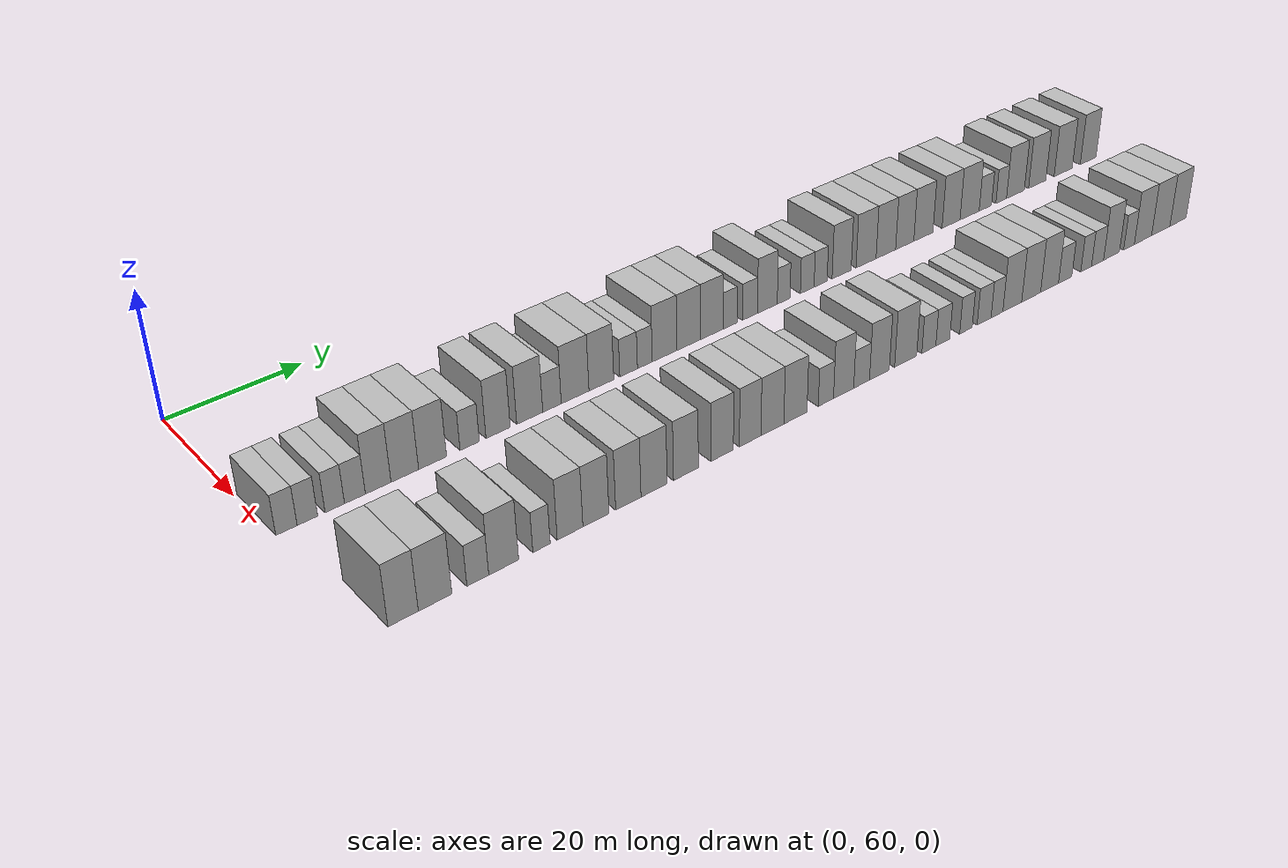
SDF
<sdf version="1.6">
 <world name="default">
  <model name="building_73">
   <static>1</static>
   <pose>25.0000 61.8319 0 0.000000 0.000000 0.000000</pose>
   <link name="link">
    <pose>0 0 3.00 0 0 0</pose>
    <collision name="collision"><geometry><box><size>10.0000 2.8187 6.0000</size></box></geometry></collision>
    <visual name="visual">
     <cast_shadows>0</cast_shadows>
     <geometry><box><size>10.0000 2.8187 6.0000</size></box></geometry>
     <material>
      <script>
       <uri>model://HANNAS_wall/materials/scripts</uri>
       <uri>model://HANNAS_wall/materials/textures</uri>
       <name>vrc/HANNAS_wall</name>
      </script>
     </material>
    </visual>
   </link>
  </model>
  <model name="building_74">
   <static>1</static>
   <pose>25.0000 64.6083 0 0.000000 0.000000 0.000000</pose>
   <link name="link">
    <pose>0 0 3.00 0 0 0</pose>
    <collision name="collision"><geometry><box><size>10.0000 2.7341 6.0000</size></box></geometry></collision>
    <visual name="visual">
     <cast_shadows>0</cast_shadows>
     <geometry><box><size>10.0000 2.7341 6.0000</size></box></geometry>
     <material>
      <script>
       <uri>model://HANNAS_wall/materials/scripts</uri>
       <uri>model://HANNAS_wall/materials/textures</uri>
       <name>vrc/HANNAS_wall</name>
      </script>
     </material>
    </visual>
   </link>
  </model>
  <model name="building_75">
   <static>1</static>
   <pose>25.0000 68.2912 0 0.000000 0.000000 0.000000</pose>
   <link name="link">
    <pose>0 0 3.00 0 0 0</pose>
    <collision name="collision"><geometry><box><size>10.0000 2.6317 6.0000</size></box></geometry></collision>
    <visual name="visual">
     <cast_shadows>0</cast_shadows>
     <geometry><box><size>10.0000 2.6317 6.0000</size></box></geometry>
     <material>
      <script>
       <uri>model://HANNAS_wall/materials/scripts</uri>
       <uri>model://HANNAS_wall/materials/textures</uri>
       <name>vrc/HANNAS_wall</name>
      </script>
     </material>
    </visual>
   </link>
  </model>
  <model name="building_76">
   <static>1</static>
   <pose>25.0000 71.0443 0 0.000000 0.000000 0.000000</pose>
   <link name="link">
    <pose>0 0 3.00 0 0 0</pose>
    <collision name="collision"><geometry><box><size>10.0000 2.8744 6.0000</size></box></geometry></collision>
    <visual name="visual">
     <cast_shadows>0</cast_shadows>
     <geometry><box><size>10.0000 2.8744 6.0000</size></box></geometry>
     <material>
      <script>
       <uri>model://HANNAS_wall/materials/scripts</uri>
       <uri>model://HANNAS_wall/materials/textures</uri>
       <name>vrc/HANNAS_wall</name>
      </script>
     </material>
    </visual>
   </link>
  </model>
  <model name="building_77">
   <static>1</static>
   <pose>25.0000 74.2816 0 0.000000 0.000000 0.000000</pose>
   <link name="link">
    <pose>0 0 4.50 0 0 0</pose>
    <collision name="collision"><geometry><box><size>10.0000 3.6001 9.0000</size></box></geometry></collision>
    <visual name="visual">
     <cast_shadows>0</cast_shadows>
     <geometry><box><size>10.0000 3.6001 9.0000</size></box></geometry>
     <material>
      <script>
       <uri>model://HANNAS_wall/materials/scripts</uri>
       <uri>model://HANNAS_wall/materials/textures</uri>
       <name>vrc/HANNAS_wall</name>
      </script>
     </material>
    </visual>
   </link>
  </model>
  <model name="building_78">
   <static>1</static>
   <pose>25.0000 78.0530 0 0.000000 0.000000 0.000000</pose>
   <link name="link">
    <pose>0 0 4.50 0 0 0</pose>
    <collision name="collision"><geometry><box><size>10.0000 3.9428 9.0000</size></box></geometry></collision>
    <visual name="visual">
     <cast_shadows>0</cast_shadows>
     <geometry><box><size>10.0000 3.9428 9.0000</size></box></geometry>
     <material>
      <script>
       <uri>model://HANNAS_wall/materials/scripts</uri>
       <uri>model://HANNAS_wall/materials/textures</uri>
       <name>vrc/HANNAS_wall</name>
      </script>
     </material>
    </visual>
   </link>
  </model>
  <model name="building_79">
   <static>1</static>
   <pose>25.0000 82.0586 0 0.000000 0.000000 0.000000</pose>
   <link name="link">
    <pose>0 0 4.50 0 0 0</pose>
    <collision name="collision"><geometry><box><size>10.0000 4.0683 9.0000</size></box></geometry></collision>
    <visual name="visual">
     <cast_shadows>0</cast_shadows>
     <geometry><box><size>10.0000 4.0683 9.0000</size></box></geometry>
     <material>
      <script>
       <uri>model://HANNAS_wall/materials/scripts</uri>
       <uri>model://HANNAS_wall/materials/textures</uri>
       <name>vrc/HANNAS_wall</name>
      </script>
     </material>
    </visual>
   </link>
  </model>
  <model name="building_80">
   <static>1</static>
   <pose>25.0000 87.5344 0 0.000000 0.000000 0.000000</pose>
   <link name="link">
    <pose>0 0 3.00 0 0 0</pose>
    <collision name="collision"><geometry><box><size>10.0000 2.8834 6.0000</size></box></geometry></collision>
    <visual name="visual">
     <cast_shadows>0</cast_shadows>
     <geometry><box><size>10.0000 2.8834 6.0000</size></box></geometry>
     <material>
      <script>
       <uri>model://HANNAS_wall/materials/scripts</uri>
       <uri>model://HANNAS_wall/materials/textures</uri>
       <name>vrc/HANNAS_wall</name>
      </script>
     </material>
    </visual>
   </link>
  </model>
  <model name="building_81">
   <static>1</static>
   <pose>25.0000 91.8298 0 0.000000 0.000000 0.000000</pose>
   <link name="link">
    <pose>0 0 4.50 0 0 0</pose>
    <collision name="collision"><geometry><box><size>10.0000 3.7073 9.0000</size></box></geometry></collision>
    <visual name="visual">
     <cast_shadows>0</cast_shadows>
     <geometry><box><size>10.0000 3.7073 9.0000</size></box></geometry>
     <material>
      <script>
       <uri>model://HANNAS_wall/materials/scripts</uri>
       <uri>model://HANNAS_wall/materials/textures</uri>
       <name>vrc/HANNAS_wall</name>
      </script>
     </material>
    </visual>
   </link>
  </model>
  <model name="building_82">
   <static>1</static>
   <pose>25.0000 96.7213 0 0.000000 0.000000 0.000000</pose>
   <link name="link">
    <pose>0 0 4.50 0 0 0</pose>
    <collision name="collision"><geometry><box><size>10.0000 4.0758 9.0000</size></box></geometry></collision>
    <visual name="visual">
     <cast_shadows>0</cast_shadows>
     <geometry><box><size>10.0000 4.0758 9.0000</size></box></geometry>
     <material>
      <script>
       <uri>model://HANNAS_wall/materials/scripts</uri>
       <uri>model://HANNAS_wall/materials/textures</uri>
       <name>vrc/HANNAS_wall</name>
      </script>
     </material>
    </visual>
   </link>
  </model>
  <model name="building_83">
   <static>1</static>
   <pose>25.0000 100.2314 0 0.000000 0.000000 0.000000</pose>
   <link name="link">
    <pose>0 0 3.00 0 0 0</pose>
    <collision name="collision"><geometry><box><size>10.0000 2.9443 6.0000</size></box></geometry></collision>
    <visual name="visual">
     <cast_shadows>0</cast_shadows>
     <geometry><box><size>10.0000 2.9443 6.0000</size></box></geometry>
     <material>
      <script>
       <uri>model://HANNAS_wall/materials/scripts</uri>
       <uri>model://HANNAS_wall/materials/textures</uri>
       <name>vrc/HANNAS_wall</name>
      </script>
     </material>
    </visual>
   </link>
  </model>
  <model name="building_84">
   <static>1</static>
   <pose>25.0000 103.9485 0 0.000000 0.000000 0.000000</pose>
   <link name="link">
    <pose>0 0 4.50 0 0 0</pose>
    <collision name="collision"><geometry><box><size>10.0000 4.4898 9.0000</size></box></geometry></collision>
    <visual name="visual">
     <cast_shadows>0</cast_shadows>
     <geometry><box><size>10.0000 4.4898 9.0000</size></box></geometry>
     <material>
      <script>
       <uri>model://HANNAS_wall/materials/scripts</uri>
       <uri>model://HANNAS_wall/materials/textures</uri>
       <name>vrc/HANNAS_wall</name>
      </script>
     </material>
    </visual>
   </link>
  </model>
  <model name="building_85">
   <static>1</static>
   <pose>25.0000 108.2435 0 0.000000 0.000000 0.000000</pose>
   <link name="link">
    <pose>0 0 4.50 0 0 0</pose>
    <collision name="collision"><geometry><box><size>10.0000 4.1002 9.0000</size></box></geometry></collision>
    <visual name="visual">
     <cast_shadows>0</cast_shadows>
     <geometry><box><size>10.0000 4.1002 9.0000</size></box></geometry>
     <material>
      <script>
       <uri>model://HANNAS_wall/materials/scripts</uri>
       <uri>model://HANNAS_wall/materials/textures</uri>
       <name>vrc/HANNAS_wall</name>
      </script>
     </material>
    </visual>
   </link>
  </model>
  <model name="building_86">
   <static>1</static>
   <pose>25.0000 112.7865 0 0.000000 0.000000 0.000000</pose>
   <link name="link">
    <pose>0 0 3.00 0 0 0</pose>
    <collision name="collision"><geometry><box><size>10.0000 2.9858 6.0000</size></box></geometry></collision>
    <visual name="visual">
     <cast_shadows>0</cast_shadows>
     <geometry><box><size>10.0000 2.9858 6.0000</size></box></geometry>
     <material>
      <script>
       <uri>model://HANNAS_wall/materials/scripts</uri>
       <uri>model://HANNAS_wall/materials/textures</uri>
       <name>vrc/HANNAS_wall</name>
      </script>
     </material>
    </visual>
   </link>
  </model>
  <model name="building_87">
   <static>1</static>
   <pose>25.0000 115.5462 0 0.000000 0.000000 0.000000</pose>
   <link name="link">
    <pose>0 0 3.00 0 0 0</pose>
    <collision name="collision"><geometry><box><size>10.0000 2.5335 6.0000</size></box></geometry></collision>
    <visual name="visual">
     <cast_shadows>0</cast_shadows>
     <geometry><box><size>10.0000 2.5335 6.0000</size></box></geometry>
     <material>
      <script>
       <uri>model://HANNAS_wall/materials/scripts</uri>
       <uri>model://HANNAS_wall/materials/textures</uri>
       <name>vrc/HANNAS_wall</name>
      </script>
     </material>
    </visual>
   </link>
  </model>
  <model name="building_88">
   <static>1</static>
   <pose>25.0000 118.9617 0 0.000000 0.000000 0.000000</pose>
   <link name="link">
    <pose>0 0 4.50 0 0 0</pose>
    <collision name="collision"><geometry><box><size>10.0000 4.2975 9.0000</size></box></geometry></collision>
    <visual name="visual">
     <cast_shadows>0</cast_shadows>
     <geometry><box><size>10.0000 4.2975 9.0000</size></box></geometry>
     <material>
      <script>
       <uri>model://HANNAS_wall/materials/scripts</uri>
       <uri>model://HANNAS_wall/materials/textures</uri>
       <name>vrc/HANNAS_wall</name>
      </script>
     </material>
    </visual>
   </link>
  </model>
  <model name="building_89">
   <static>1</static>
   <pose>25.0000 123.1814 0 0.000000 0.000000 0.000000</pose>
   <link name="link">
    <pose>0 0 4.50 0 0 0</pose>
    <collision name="collision"><geometry><box><size>10.0000 4.1420 9.0000</size></box></geometry></collision>
    <visual name="visual">
     <cast_shadows>0</cast_shadows>
     <geometry><box><size>10.0000 4.1420 9.0000</size></box></geometry>
     <material>
      <script>
       <uri>model://HANNAS_wall/materials/scripts</uri>
       <uri>model://HANNAS_wall/materials/textures</uri>
       <name>vrc/HANNAS_wall</name>
      </script>
     </material>
    </visual>
   </link>
  </model>
  <model name="building_90">
   <static>1</static>
   <pose>25.0000 127.3160 0 0.000000 0.000000 0.000000</pose>
   <link name="link">
    <pose>0 0 4.50 0 0 0</pose>
    <collision name="collision"><geometry><box><size>10.0000 4.1271 9.0000</size></box></geometry></collision>
    <visual name="visual">
     <cast_shadows>0</cast_shadows>
     <geometry><box><size>10.0000 4.1271 9.0000</size></box></geometry>
     <material>
      <script>
       <uri>model://HANNAS_wall/materials/scripts</uri>
       <uri>model://HANNAS_wall/materials/textures</uri>
       <name>vrc/HANNAS_wall</name>
      </script>
     </material>
    </visual>
   </link>
  </model>
  <model name="building_91">
   <static>1</static>
   <pose>25.0000 130.6345 0 0.000000 0.000000 0.000000</pose>
   <link name="link">
    <pose>0 0 3.00 0 0 0</pose>
    <collision name="collision"><geometry><box><size>10.0000 2.5099 6.0000</size></box></geometry></collision>
    <visual name="visual">
     <cast_shadows>0</cast_shadows>
     <geometry><box><size>10.0000 2.5099 6.0000</size></box></geometry>
     <material>
      <script>
       <uri>model://HANNAS_wall/materials/scripts</uri>
       <uri>model://HANNAS_wall/materials/textures</uri>
       <name>vrc/HANNAS_wall</name>
      </script>
     </material>
    </visual>
   </link>
  </model>
  <model name="building_92">
   <static>1</static>
   <pose>25.0000 134.2920 0 0.000000 0.000000 0.000000</pose>
   <link name="link">
    <pose>0 0 3.00 0 0 0</pose>
    <collision name="collision"><geometry><box><size>10.0000 2.8053 6.0000</size></box></geometry></collision>
    <visual name="visual">
     <cast_shadows>0</cast_shadows>
     <geometry><box><size>10.0000 2.8053 6.0000</size></box></geometry>
     <material>
      <script>
       <uri>model://HANNAS_wall/materials/scripts</uri>
       <uri>model://HANNAS_wall/materials/textures</uri>
       <name>vrc/HANNAS_wall</name>
      </script>
     </material>
    </visual>
   </link>
  </model>
  <model name="building_93">
   <static>1</static>
   <pose>25.0000 137.5602 0 0.000000 0.000000 0.000000</pose>
   <link name="link">
    <pose>0 0 4.50 0 0 0</pose>
    <collision name="collision"><geometry><box><size>10.0000 3.7310 9.0000</size></box></geometry></collision>
    <visual name="visual">
     <cast_shadows>0</cast_shadows>
     <geometry><box><size>10.0000 3.7310 9.0000</size></box></geometry>
     <material>
      <script>
       <uri>model://HANNAS_wall/materials/scripts</uri>
       <uri>model://HANNAS_wall/materials/textures</uri>
       <name>vrc/HANNAS_wall</name>
      </script>
     </material>
    </visual>
   </link>
  </model>
  <model name="building_94">
   <static>1</static>
   <pose>25.0000 140.6447 0 0.000000 0.000000 0.000000</pose>
   <link name="link">
    <pose>0 0 3.00 0 0 0</pose>
    <collision name="collision"><geometry><box><size>10.0000 2.4380 6.0000</size></box></geometry></collision>
    <visual name="visual">
     <cast_shadows>0</cast_shadows>
     <geometry><box><size>10.0000 2.4380 6.0000</size></box></geometry>
     <material>
      <script>
       <uri>model://HANNAS_wall/materials/scripts</uri>
       <uri>model://HANNAS_wall/materials/textures</uri>
       <name>vrc/HANNAS_wall</name>
      </script>
     </material>
    </visual>
   </link>
  </model>
  <model name="building_95">
   <static>1</static>
   <pose>25.0000 145.2001 0 0.000000 0.000000 0.000000</pose>
   <link name="link">
    <pose>0 0 3.00 0 0 0</pose>
    <collision name="collision"><geometry><box><size>10.0000 2.6729 6.0000</size></box></geometry></collision>
    <visual name="visual">
     <cast_shadows>0</cast_shadows>
     <geometry><box><size>10.0000 2.6729 6.0000</size></box></geometry>
     <material>
      <script>
       <uri>model://HANNAS_wall/materials/scripts</uri>
       <uri>model://HANNAS_wall/materials/textures</uri>
       <name>vrc/HANNAS_wall</name>
      </script>
     </material>
    </visual>
   </link>
  </model>
  <model name="building_96">
   <static>1</static>
   <pose>25.0000 147.8173 0 0.000000 0.000000 0.000000</pose>
   <link name="link">
    <pose>0 0 3.00 0 0 0</pose>
    <collision name="collision"><geometry><box><size>10.0000 2.5614 6.0000</size></box></geometry></collision>
    <visual name="visual">
     <cast_shadows>0</cast_shadows>
     <geometry><box><size>10.0000 2.5614 6.0000</size></box></geometry>
     <material>
      <script>
       <uri>model://HANNAS_wall/materials/scripts</uri>
       <uri>model://HANNAS_wall/materials/textures</uri>
       <name>vrc/HANNAS_wall</name>
      </script>
     </material>
    </visual>
   </link>
  </model>
  <model name="building_97">
   <static>1</static>
   <pose>25.0000 152.0113 0 0.000000 0.000000 0.000000</pose>
   <link name="link">
    <pose>0 0 4.50 0 0 0</pose>
    <collision name="collision"><geometry><box><size>10.0000 3.8267 9.0000</size></box></geometry></collision>
    <visual name="visual">
     <cast_shadows>0</cast_shadows>
     <geometry><box><size>10.0000 3.8267 9.0000</size></box></geometry>
     <material>
      <script>
       <uri>model://HANNAS_wall/materials/scripts</uri>
       <uri>model://HANNAS_wall/materials/textures</uri>
       <name>vrc/HANNAS_wall</name>
      </script>
     </material>
    </visual>
   </link>
  </model>
  <model name="building_98">
   <static>1</static>
   <pose>25.0000 156.9770 0 0.000000 0.000000 0.000000</pose>
   <link name="link">
    <pose>0 0 4.50 0 0 0</pose>
    <collision name="collision"><geometry><box><size>10.0000 4.1046 9.0000</size></box></geometry></collision>
    <visual name="visual">
     <cast_shadows>0</cast_shadows>
     <geometry><box><size>10.0000 4.1046 9.0000</size></box></geometry>
     <material>
      <script>
       <uri>model://HANNAS_wall/materials/scripts</uri>
       <uri>model://HANNAS_wall/materials/textures</uri>
       <name>vrc/HANNAS_wall</name>
      </script>
     </material>
    </visual>
   </link>
  </model>
  <model name="building_99">
   <static>1</static>
   <pose>25.0000 161.0679 0 0.000000 0.000000 0.000000</pose>
   <link name="link">
    <pose>0 0 4.50 0 0 0</pose>
    <collision name="collision"><geometry><box><size>10.0000 4.0772 9.0000</size></box></geometry></collision>
    <visual name="visual">
     <cast_shadows>0</cast_shadows>
     <geometry><box><size>10.0000 4.0772 9.0000</size></box></geometry>
     <material>
      <script>
       <uri>model://HANNAS_wall/materials/scripts</uri>
       <uri>model://HANNAS_wall/materials/textures</uri>
       <name>vrc/HANNAS_wall</name>
      </script>
     </material>
    </visual>
   </link>
  </model>
  <model name="building_100">
   <static>1</static>
   <pose>25.0000 165.0395 0 0.000000 0.000000 0.000000</pose>
   <link name="link">
    <pose>0 0 4.50 0 0 0</pose>
    <collision name="collision"><geometry><box><size>10.0000 3.8660 9.0000</size></box></geometry></collision>
    <visual name="visual">
     <cast_shadows>0</cast_shadows>
     <geometry><box><size>10.0000 3.8660 9.0000</size></box></geometry>
     <material>
      <script>
       <uri>model://HANNAS_wall/materials/scripts</uri>
       <uri>model://HANNAS_wall/materials/textures</uri>
       <name>vrc/HANNAS_wall</name>
      </script>
     </material>
    </visual>
   </link>
  </model>
  <model name="building_101">
   <static>1</static>
   <pose>25.0000 169.0310 0 0.000000 0.000000 0.000000</pose>
   <link name="link">
    <pose>0 0 4.50 0 0 0</pose>
    <collision name="collision"><geometry><box><size>10.0000 4.1170 9.0000</size></box></geometry></collision>
    <visual name="visual">
     <cast_shadows>0</cast_shadows>
     <geometry><box><size>10.0000 4.1170 9.0000</size></box></geometry>
     <material>
      <script>
       <uri>model://HANNAS_wall/materials/scripts</uri>
       <uri>model://HANNAS_wall/materials/textures</uri>
       <name>vrc/HANNAS_wall</name>
      </script>
     </material>
    </visual>
   </link>
  </model>
  <model name="building_102">
   <static>1</static>
   <pose>25.0000 175.0719 0 0.000000 0.000000 0.000000</pose>
   <link name="link">
    <pose>0 0 4.50 0 0 0</pose>
    <collision name="collision"><geometry><box><size>10.0000 3.9646 9.0000</size></box></geometry></collision>
    <visual name="visual">
     <cast_shadows>0</cast_shadows>
     <geometry><box><size>10.0000 3.9646 9.0000</size></box></geometry>
     <material>
      <script>
       <uri>model://HANNAS_wall/materials/scripts</uri>
       <uri>model://HANNAS_wall/materials/textures</uri>
       <name>vrc/HANNAS_wall</name>
      </script>
     </material>
    </visual>
   </link>
  </model>
  <model name="building_103">
   <static>1</static>
   <pose>25.0000 179.2059 0 0.000000 0.000000 0.000000</pose>
   <link name="link">
    <pose>0 0 4.50 0 0 0</pose>
    <collision name="collision"><geometry><box><size>10.0000 4.3034 9.0000</size></box></geometry></collision>
    <visual name="visual">
     <cast_shadows>0</cast_shadows>
     <geometry><box><size>10.0000 4.3034 9.0000</size></box></geometry>
     <material>
      <script>
       <uri>model://HANNAS_wall/materials/scripts</uri>
       <uri>model://HANNAS_wall/materials/textures</uri>
       <name>vrc/HANNAS_wall</name>
      </script>
     </material>
    </visual>
   </link>
  </model>
  <model name="building_104">
   <static>1</static>
   <pose>25.0000 182.7701 0 0.000000 0.000000 0.000000</pose>
   <link name="link">
    <pose>0 0 3.00 0 0 0</pose>
    <collision name="collision"><geometry><box><size>10.0000 2.8250 6.0000</size></box></geometry></collision>
    <visual name="visual">
     <cast_shadows>0</cast_shadows>
     <geometry><box><size>10.0000 2.8250 6.0000</size></box></geometry>
     <material>
      <script>
       <uri>model://HANNAS_wall/materials/scripts</uri>
       <uri>model://HANNAS_wall/materials/textures</uri>
       <name>vrc/HANNAS_wall</name>
      </script>
     </material>
    </visual>
   </link>
  </model>
  <model name="building_105">
   <static>1</static>
   <pose>25.0000 186.4156 0 0.000000 0.000000 0.000000</pose>
   <link name="link">
    <pose>0 0 3.00 0 0 0</pose>
    <collision name="collision"><geometry><box><size>10.0000 2.4659 6.0000</size></box></geometry></collision>
    <visual name="visual">
     <cast_shadows>0</cast_shadows>
     <geometry><box><size>10.0000 2.4659 6.0000</size></box></geometry>
     <material>
      <script>
       <uri>model://HANNAS_wall/materials/scripts</uri>
       <uri>model://HANNAS_wall/materials/textures</uri>
       <name>vrc/HANNAS_wall</name>
      </script>
     </material>
    </visual>
   </link>
  </model>
  <model name="building_106">
   <static>1</static>
   <pose>25.0000 189.7347 0 0.000000 0.000000 0.000000</pose>
   <link name="link">
    <pose>0 0 4.50 0 0 0</pose>
    <collision name="collision"><geometry><box><size>10.0000 4.1724 9.0000</size></box></geometry></collision>
    <visual name="visual">
     <cast_shadows>0</cast_shadows>
     <geometry><box><size>10.0000 4.1724 9.0000</size></box></geometry>
     <material>
      <script>
       <uri>model://HANNAS_wall/materials/scripts</uri>
       <uri>model://HANNAS_wall/materials/textures</uri>
       <name>vrc/HANNAS_wall</name>
      </script>
     </material>
    </visual>
   </link>
  </model>
  <model name="building_107">
   <static>1</static>
   <pose>25.0000 194.8860 0 0.000000 0.000000 0.000000</pose>
   <link name="link">
    <pose>0 0 4.50 0 0 0</pose>
    <collision name="collision"><geometry><box><size>10.0000 4.1301 9.0000</size></box></geometry></collision>
    <visual name="visual">
     <cast_shadows>0</cast_shadows>
     <geometry><box><size>10.0000 4.1301 9.0000</size></box></geometry>
     <material>
      <script>
       <uri>model://HANNAS_wall/materials/scripts</uri>
       <uri>model://HANNAS_wall/materials/textures</uri>
       <name>vrc/HANNAS_wall</name>
      </script>
     </material>
    </visual>
   </link>
  </model>
  <model name="building_108">
   <static>1</static>
   <pose>25.0000 201.1673 0 0.000000 0.000000 0.000000</pose>
   <link name="link">
    <pose>0 0 4.50 0 0 0</pose>
    <collision name="collision"><geometry><box><size>10.0000 4.4326 9.0000</size></box></geometry></collision>
    <visual name="visual">
     <cast_shadows>0</cast_shadows>
     <geometry><box><size>10.0000 4.4326 9.0000</size></box></geometry>
     <material>
      <script>
       <uri>model://HANNAS_wall/materials/scripts</uri>
       <uri>model://HANNAS_wall/materials/textures</uri>
       <name>vrc/HANNAS_wall</name>
      </script>
     </material>
    </visual>
   </link>
  </model>
  <model name="building_109">
   <static>1</static>
   <pose>25.0000 207.3583 0 0.000000 0.000000 0.000000</pose>
   <link name="link">
    <pose>0 0 4.50 0 0 0</pose>
    <collision name="collision"><geometry><box><size>10.0000 3.9495 9.0000</size></box></geometry></collision>
    <visual name="visual">
     <cast_shadows>0</cast_shadows>
     <geometry><box><size>10.0000 3.9495 9.0000</size></box></geometry>
     <material>
      <script>
       <uri>model://HANNAS_wall/materials/scripts</uri>
       <uri>model://HANNAS_wall/materials/textures</uri>
       <name>vrc/HANNAS_wall</name>
      </script>
     </material>
    </visual>
   </link>
  </model>
  <model name="building_180">
   <static>1</static>
   <pose>47.0000 64.5624 0 0.000000 0.000000 0.000000</pose>
   <link name="link">
    <pose>0 0 4.50 0 0 0</pose>
    <collision name="collision"><geometry><box><size>10.0000 3.9040 9.0000</size></box></geometry></collision>
    <visual name="visual">
     <cast_shadows>0</cast_shadows>
     <geometry><box><size>10.0000 3.9040 9.0000</size></box></geometry>
     <material>
      <script>
       <uri>model://HANNAS_wall/materials/scripts</uri>
       <uri>model://HANNAS_wall/materials/textures</uri>
       <name>vrc/HANNAS_wall</name>
      </script>
     </material>
    </visual>
   </link>
  </model>
  <model name="building_181">
   <static>1</static>
   <pose>47.0000 68.7230 0 0.000000 0.000000 0.000000</pose>
   <link name="link">
    <pose>0 0 4.50 0 0 0</pose>
    <collision name="collision"><geometry><box><size>10.0000 4.4172 9.0000</size></box></geometry></collision>
    <visual name="visual">
     <cast_shadows>0</cast_shadows>
     <geometry><box><size>10.0000 4.4172 9.0000</size></box></geometry>
     <material>
      <script>
       <uri>model://HANNAS_wall/materials/scripts</uri>
       <uri>model://HANNAS_wall/materials/textures</uri>
       <name>vrc/HANNAS_wall</name>
      </script>
     </material>
    </visual>
   </link>
  </model>
  <model name="building_182">
   <static>1</static>
   <pose>47.0000 74.4105 0 0.000000 0.000000 0.000000</pose>
   <link name="link">
    <pose>0 0 3.00 0 0 0</pose>
    <collision name="collision"><geometry><box><size>10.0000 2.9579 6.0000</size></box></geometry></collision>
    <visual name="visual">
     <cast_shadows>0</cast_shadows>
     <geometry><box><size>10.0000 2.9579 6.0000</size></box></geometry>
     <material>
      <script>
       <uri>model://HANNAS_wall/materials/scripts</uri>
       <uri>model://HANNAS_wall/materials/textures</uri>
       <name>vrc/HANNAS_wall</name>
      </script>
     </material>
    </visual>
   </link>
  </model>
  <model name="building_183">
   <static>1</static>
   <pose>47.0000 77.9541 0 0.000000 0.000000 0.000000</pose>
   <link name="link">
    <pose>0 0 4.50 0 0 0</pose>
    <collision name="collision"><geometry><box><size>10.0000 4.1292 9.0000</size></box></geometry></collision>
    <visual name="visual">
     <cast_shadows>0</cast_shadows>
     <geometry><box><size>10.0000 4.1292 9.0000</size></box></geometry>
     <material>
      <script>
       <uri>model://HANNAS_wall/materials/scripts</uri>
       <uri>model://HANNAS_wall/materials/textures</uri>
       <name>vrc/HANNAS_wall</name>
      </script>
     </material>
    </visual>
   </link>
  </model>
  <model name="building_184">
   <static>1</static>
   <pose>47.0000 83.2530 0 0.000000 0.000000 0.000000</pose>
   <link name="link">
    <pose>0 0 3.00 0 0 0</pose>
    <collision name="collision"><geometry><box><size>10.0000 2.4685 6.0000</size></box></geometry></collision>
    <visual name="visual">
     <cast_shadows>0</cast_shadows>
     <geometry><box><size>10.0000 2.4685 6.0000</size></box></geometry>
     <material>
      <script>
       <uri>model://HANNAS_wall/materials/scripts</uri>
       <uri>model://HANNAS_wall/materials/textures</uri>
       <name>vrc/HANNAS_wall</name>
      </script>
     </material>
    </visual>
   </link>
  </model>
  <model name="building_185">
   <static>1</static>
   <pose>47.0000 87.3559 0 0.000000 0.000000 0.000000</pose>
   <link name="link">
    <pose>0 0 4.50 0 0 0</pose>
    <collision name="collision"><geometry><box><size>10.0000 3.7373 9.0000</size></box></geometry></collision>
    <visual name="visual">
     <cast_shadows>0</cast_shadows>
     <geometry><box><size>10.0000 3.7373 9.0000</size></box></geometry>
     <material>
      <script>
       <uri>model://HANNAS_wall/materials/scripts</uri>
       <uri>model://HANNAS_wall/materials/textures</uri>
       <name>vrc/HANNAS_wall</name>
      </script>
     </material>
    </visual>
   </link>
  </model>
  <model name="building_186">
   <static>1</static>
   <pose>47.0000 91.1554 0 0.000000 0.000000 0.000000</pose>
   <link name="link">
    <pose>0 0 4.50 0 0 0</pose>
    <collision name="collision"><geometry><box><size>10.0000 3.8617 9.0000</size></box></geometry></collision>
    <visual name="visual">
     <cast_shadows>0</cast_shadows>
     <geometry><box><size>10.0000 3.8617 9.0000</size></box></geometry>
     <material>
      <script>
       <uri>model://HANNAS_wall/materials/scripts</uri>
       <uri>model://HANNAS_wall/materials/textures</uri>
       <name>vrc/HANNAS_wall</name>
      </script>
     </material>
    </visual>
   </link>
  </model>
  <model name="building_187">
   <static>1</static>
   <pose>47.0000 96.0123 0 0.000000 0.000000 0.000000</pose>
   <link name="link">
    <pose>0 0 4.50 0 0 0</pose>
    <collision name="collision"><geometry><box><size>10.0000 3.8521 9.0000</size></box></geometry></collision>
    <visual name="visual">
     <cast_shadows>0</cast_shadows>
     <geometry><box><size>10.0000 3.8521 9.0000</size></box></geometry>
     <material>
      <script>
       <uri>model://HANNAS_wall/materials/scripts</uri>
       <uri>model://HANNAS_wall/materials/textures</uri>
       <name>vrc/HANNAS_wall</name>
      </script>
     </material>
    </visual>
   </link>
  </model>
  <model name="building_188">
   <static>1</static>
   <pose>47.0000 99.9639 0 0.000000 0.000000 0.000000</pose>
   <link name="link">
    <pose>0 0 4.50 0 0 0</pose>
    <collision name="collision"><geometry><box><size>10.0000 4.0510 9.0000</size></box></geometry></collision>
    <visual name="visual">
     <cast_shadows>0</cast_shadows>
     <geometry><box><size>10.0000 4.0510 9.0000</size></box></geometry>
     <material>
      <script>
       <uri>model://HANNAS_wall/materials/scripts</uri>
       <uri>model://HANNAS_wall/materials/textures</uri>
       <name>vrc/HANNAS_wall</name>
      </script>
     </material>
    </visual>
   </link>
  </model>
  <model name="building_189">
   <static>1</static>
   <pose>47.0000 104.9676 0 0.000000 0.000000 0.000000</pose>
   <link name="link">
    <pose>0 0 4.50 0 0 0</pose>
    <collision name="collision"><geometry><box><size>10.0000 3.9566 9.0000</size></box></geometry></collision>
    <visual name="visual">
     <cast_shadows>0</cast_shadows>
     <geometry><box><size>10.0000 3.9566 9.0000</size></box></geometry>
     <material>
      <script>
       <uri>model://HANNAS_wall/materials/scripts</uri>
       <uri>model://HANNAS_wall/materials/textures</uri>
       <name>vrc/HANNAS_wall</name>
      </script>
     </material>
    </visual>
   </link>
  </model>
  <model name="building_190">
   <static>1</static>
   <pose>47.0000 110.7946 0 0.000000 0.000000 0.000000</pose>
   <link name="link">
    <pose>0 0 4.50 0 0 0</pose>
    <collision name="collision"><geometry><box><size>10.0000 3.6973 9.0000</size></box></geometry></collision>
    <visual name="visual">
     <cast_shadows>0</cast_shadows>
     <geometry><box><size>10.0000 3.6973 9.0000</size></box></geometry>
     <material>
      <script>
       <uri>model://HANNAS_wall/materials/scripts</uri>
       <uri>model://HANNAS_wall/materials/textures</uri>
       <name>vrc/HANNAS_wall</name>
      </script>
     </material>
    </visual>
   </link>
  </model>
  <model name="building_191">
   <static>1</static>
   <pose>47.0000 115.4514 0 0.000000 0.000000 0.000000</pose>
   <link name="link">
    <pose>0 0 4.50 0 0 0</pose>
    <collision name="collision"><geometry><box><size>10.0000 3.6164 9.0000</size></box></geometry></collision>
    <visual name="visual">
     <cast_shadows>0</cast_shadows>
     <geometry><box><size>10.0000 3.6164 9.0000</size></box></geometry>
     <material>
      <script>
       <uri>model://HANNAS_wall/materials/scripts</uri>
       <uri>model://HANNAS_wall/materials/textures</uri>
       <name>vrc/HANNAS_wall</name>
      </script>
     </material>
    </visual>
   </link>
  </model>
  <model name="building_192">
   <static>1</static>
   <pose>47.0000 119.2091 0 0.000000 0.000000 0.000000</pose>
   <link name="link">
    <pose>0 0 4.50 0 0 0</pose>
    <collision name="collision"><geometry><box><size>10.0000 3.8989 9.0000</size></box></geometry></collision>
    <visual name="visual">
     <cast_shadows>0</cast_shadows>
     <geometry><box><size>10.0000 3.8989 9.0000</size></box></geometry>
     <material>
      <script>
       <uri>model://HANNAS_wall/materials/scripts</uri>
       <uri>model://HANNAS_wall/materials/textures</uri>
       <name>vrc/HANNAS_wall</name>
      </script>
     </material>
    </visual>
   </link>
  </model>
  <model name="building_193">
   <static>1</static>
   <pose>47.0000 123.1654 0 0.000000 0.000000 0.000000</pose>
   <link name="link">
    <pose>0 0 4.50 0 0 0</pose>
    <collision name="collision"><geometry><box><size>10.0000 4.0137 9.0000</size></box></geometry></collision>
    <visual name="visual">
     <cast_shadows>0</cast_shadows>
     <geometry><box><size>10.0000 4.0137 9.0000</size></box></geometry>
     <material>
      <script>
       <uri>model://HANNAS_wall/materials/scripts</uri>
       <uri>model://HANNAS_wall/materials/textures</uri>
       <name>vrc/HANNAS_wall</name>
      </script>
     </material>
    </visual>
   </link>
  </model>
  <model name="building_194">
   <static>1</static>
   <pose>47.0000 128.5284 0 0.000000 0.000000 0.000000</pose>
   <link name="link">
    <pose>0 0 3.00 0 0 0</pose>
    <collision name="collision"><geometry><box><size>10.0000 2.7123 6.0000</size></box></geometry></collision>
    <visual name="visual">
     <cast_shadows>0</cast_shadows>
     <geometry><box><size>10.0000 2.7123 6.0000</size></box></geometry>
     <material>
      <script>
       <uri>model://HANNAS_wall/materials/scripts</uri>
       <uri>model://HANNAS_wall/materials/textures</uri>
       <name>vrc/HANNAS_wall</name>
      </script>
     </material>
    </visual>
   </link>
  </model>
  <model name="building_195">
   <static>1</static>
   <pose>47.0000 131.7129 0 0.000000 0.000000 0.000000</pose>
   <link name="link">
    <pose>0 0 4.50 0 0 0</pose>
    <collision name="collision"><geometry><box><size>10.0000 3.6566 9.0000</size></box></geometry></collision>
    <visual name="visual">
     <cast_shadows>0</cast_shadows>
     <geometry><box><size>10.0000 3.6566 9.0000</size></box></geometry>
     <material>
      <script>
       <uri>model://HANNAS_wall/materials/scripts</uri>
       <uri>model://HANNAS_wall/materials/textures</uri>
       <name>vrc/HANNAS_wall</name>
      </script>
     </material>
    </visual>
   </link>
  </model>
  <model name="building_196">
   <static>1</static>
   <pose>47.0000 134.9976 0 0.000000 0.000000 0.000000</pose>
   <link name="link">
    <pose>0 0 3.00 0 0 0</pose>
    <collision name="collision"><geometry><box><size>10.0000 2.9129 6.0000</size></box></geometry></collision>
    <visual name="visual">
     <cast_shadows>0</cast_shadows>
     <geometry><box><size>10.0000 2.9129 6.0000</size></box></geometry>
     <material>
      <script>
       <uri>model://HANNAS_wall/materials/scripts</uri>
       <uri>model://HANNAS_wall/materials/textures</uri>
       <name>vrc/HANNAS_wall</name>
      </script>
     </material>
    </visual>
   </link>
  </model>
  <model name="building_197">
   <static>1</static>
   <pose>47.0000 138.3024 0 0.000000 0.000000 0.000000</pose>
   <link name="link">
    <pose>0 0 4.50 0 0 0</pose>
    <collision name="collision"><geometry><box><size>10.0000 3.6967 9.0000</size></box></geometry></collision>
    <visual name="visual">
     <cast_shadows>0</cast_shadows>
     <geometry><box><size>10.0000 3.6967 9.0000</size></box></geometry>
     <material>
      <script>
       <uri>model://HANNAS_wall/materials/scripts</uri>
       <uri>model://HANNAS_wall/materials/textures</uri>
       <name>vrc/HANNAS_wall</name>
      </script>
     </material>
    </visual>
   </link>
  </model>
  <model name="building_198">
   <static>1</static>
   <pose>47.0000 143.2595 0 0.000000 0.000000 0.000000</pose>
   <link name="link">
    <pose>0 0 4.50 0 0 0</pose>
    <collision name="collision"><geometry><box><size>10.0000 4.2175 9.0000</size></box></geometry></collision>
    <visual name="visual">
     <cast_shadows>0</cast_shadows>
     <geometry><box><size>10.0000 4.2175 9.0000</size></box></geometry>
     <material>
      <script>
       <uri>model://HANNAS_wall/materials/scripts</uri>
       <uri>model://HANNAS_wall/materials/textures</uri>
       <name>vrc/HANNAS_wall</name>
      </script>
     </material>
    </visual>
   </link>
  </model>
  <model name="building_199">
   <static>1</static>
   <pose>47.0000 147.7306 0 0.000000 0.000000 0.000000</pose>
   <link name="link">
    <pose>0 0 3.00 0 0 0</pose>
    <collision name="collision"><geometry><box><size>10.0000 2.7247 6.0000</size></box></geometry></collision>
    <visual name="visual">
     <cast_shadows>0</cast_shadows>
     <geometry><box><size>10.0000 2.7247 6.0000</size></box></geometry>
     <material>
      <script>
       <uri>model://HANNAS_wall/materials/scripts</uri>
       <uri>model://HANNAS_wall/materials/textures</uri>
       <name>vrc/HANNAS_wall</name>
      </script>
     </material>
    </visual>
   </link>
  </model>
  <model name="building_200">
   <static>1</static>
   <pose>47.0000 150.4632 0 0.000000 0.000000 0.000000</pose>
   <link name="link">
    <pose>0 0 3.00 0 0 0</pose>
    <collision name="collision"><geometry><box><size>10.0000 2.7406 6.0000</size></box></geometry></collision>
    <visual name="visual">
     <cast_shadows>0</cast_shadows>
     <geometry><box><size>10.0000 2.7406 6.0000</size></box></geometry>
     <material>
      <script>
       <uri>model://HANNAS_wall/materials/scripts</uri>
       <uri>model://HANNAS_wall/materials/textures</uri>
       <name>vrc/HANNAS_wall</name>
      </script>
     </material>
    </visual>
   </link>
  </model>
  <model name="building_201">
   <static>1</static>
   <pose>47.0000 155.0973 0 0.000000 0.000000 0.000000</pose>
   <link name="link">
    <pose>0 0 3.00 0 0 0</pose>
    <collision name="collision"><geometry><box><size>10.0000 2.5276 6.0000</size></box></geometry></collision>
    <visual name="visual">
     <cast_shadows>0</cast_shadows>
     <geometry><box><size>10.0000 2.5276 6.0000</size></box></geometry>
     <material>
      <script>
       <uri>model://HANNAS_wall/materials/scripts</uri>
       <uri>model://HANNAS_wall/materials/textures</uri>
       <name>vrc/HANNAS_wall</name>
      </script>
     </material>
    </visual>
   </link>
  </model>
  <model name="building_202">
   <static>1</static>
   <pose>47.0000 158.7894 0 0.000000 0.000000 0.000000</pose>
   <link name="link">
    <pose>0 0 3.00 0 0 0</pose>
    <collision name="collision"><geometry><box><size>10.0000 2.8566 6.0000</size></box></geometry></collision>
    <visual name="visual">
     <cast_shadows>0</cast_shadows>
     <geometry><box><size>10.0000 2.8566 6.0000</size></box></geometry>
     <material>
      <script>
       <uri>model://HANNAS_wall/materials/scripts</uri>
       <uri>model://HANNAS_wall/materials/textures</uri>
       <name>vrc/HANNAS_wall</name>
      </script>
     </material>
    </visual>
   </link>
  </model>
  <model name="building_203">
   <static>1</static>
   <pose>47.0000 161.4374 0 0.000000 0.000000 0.000000</pose>
   <link name="link">
    <pose>0 0 3.00 0 0 0</pose>
    <collision name="collision"><geometry><box><size>10.0000 2.4393 6.0000</size></box></geometry></collision>
    <visual name="visual">
     <cast_shadows>0</cast_shadows>
     <geometry><box><size>10.0000 2.4393 6.0000</size></box></geometry>
     <material>
      <script>
       <uri>model://HANNAS_wall/materials/scripts</uri>
       <uri>model://HANNAS_wall/materials/textures</uri>
       <name>vrc/HANNAS_wall</name>
      </script>
     </material>
    </visual>
   </link>
  </model>
  <model name="building_204">
   <static>1</static>
   <pose>47.0000 164.6389 0 0.000000 0.000000 0.000000</pose>
   <link name="link">
    <pose>0 0 4.50 0 0 0</pose>
    <collision name="collision"><geometry><box><size>10.0000 3.9638 9.0000</size></box></geometry></collision>
    <visual name="visual">
     <cast_shadows>0</cast_shadows>
     <geometry><box><size>10.0000 3.9638 9.0000</size></box></geometry>
     <material>
      <script>
       <uri>model://HANNAS_wall/materials/scripts</uri>
       <uri>model://HANNAS_wall/materials/textures</uri>
       <name>vrc/HANNAS_wall</name>
      </script>
     </material>
    </visual>
   </link>
  </model>
  <model name="building_205">
   <static>1</static>
   <pose>47.0000 168.6435 0 0.000000 0.000000 0.000000</pose>
   <link name="link">
    <pose>0 0 4.50 0 0 0</pose>
    <collision name="collision"><geometry><box><size>10.0000 4.0454 9.0000</size></box></geometry></collision>
    <visual name="visual">
     <cast_shadows>0</cast_shadows>
     <geometry><box><size>10.0000 4.0454 9.0000</size></box></geometry>
     <material>
      <script>
       <uri>model://HANNAS_wall/materials/scripts</uri>
       <uri>model://HANNAS_wall/materials/textures</uri>
       <name>vrc/HANNAS_wall</name>
      </script>
     </material>
    </visual>
   </link>
  </model>
  <model name="building_206">
   <static>1</static>
   <pose>47.0000 172.6109 0 0.000000 0.000000 0.000000</pose>
   <link name="link">
    <pose>0 0 4.50 0 0 0</pose>
    <collision name="collision"><geometry><box><size>10.0000 3.8894 9.0000</size></box></geometry></collision>
    <visual name="visual">
     <cast_shadows>0</cast_shadows>
     <geometry><box><size>10.0000 3.8894 9.0000</size></box></geometry>
     <material>
      <script>
       <uri>model://HANNAS_wall/materials/scripts</uri>
       <uri>model://HANNAS_wall/materials/textures</uri>
       <name>vrc/HANNAS_wall</name>
      </script>
     </material>
    </visual>
   </link>
  </model>
  <model name="building_207">
   <static>1</static>
   <pose>47.0000 176.0338 0 0.000000 0.000000 0.000000</pose>
   <link name="link">
    <pose>0 0 3.00 0 0 0</pose>
    <collision name="collision"><geometry><box><size>10.0000 2.9564 6.0000</size></box></geometry></collision>
    <visual name="visual">
     <cast_shadows>0</cast_shadows>
     <geometry><box><size>10.0000 2.9564 6.0000</size></box></geometry>
     <material>
      <script>
       <uri>model://HANNAS_wall/materials/scripts</uri>
       <uri>model://HANNAS_wall/materials/textures</uri>
       <name>vrc/HANNAS_wall</name>
      </script>
     </material>
    </visual>
   </link>
  </model>
  <model name="building_208">
   <static>1</static>
   <pose>47.0000 180.7190 0 0.000000 0.000000 0.000000</pose>
   <link name="link">
    <pose>0 0 3.00 0 0 0</pose>
    <collision name="collision"><geometry><box><size>10.0000 2.4140 6.0000</size></box></geometry></collision>
    <visual name="visual">
     <cast_shadows>0</cast_shadows>
     <geometry><box><size>10.0000 2.4140 6.0000</size></box></geometry>
     <material>
      <script>
       <uri>model://HANNAS_wall/materials/scripts</uri>
       <uri>model://HANNAS_wall/materials/textures</uri>
       <name>vrc/HANNAS_wall</name>
      </script>
     </material>
    </visual>
   </link>
  </model>
  <model name="building_209">
   <static>1</static>
   <pose>47.0000 183.3031 0 0.000000 0.000000 0.000000</pose>
   <link name="link">
    <pose>0 0 3.00 0 0 0</pose>
    <collision name="collision"><geometry><box><size>10.0000 2.7542 6.0000</size></box></geometry></collision>
    <visual name="visual">
     <cast_shadows>0</cast_shadows>
     <geometry><box><size>10.0000 2.7542 6.0000</size></box></geometry>
     <material>
      <script>
       <uri>model://HANNAS_wall/materials/scripts</uri>
       <uri>model://HANNAS_wall/materials/textures</uri>
       <name>vrc/HANNAS_wall</name>
      </script>
     </material>
    </visual>
   </link>
  </model>
  <model name="building_210">
   <static>1</static>
   <pose>47.0000 186.5048 0 0.000000 0.000000 0.000000</pose>
   <link name="link">
    <pose>0 0 4.50 0 0 0</pose>
    <collision name="collision"><geometry><box><size>10.0000 3.6492 9.0000</size></box></geometry></collision>
    <visual name="visual">
     <cast_shadows>0</cast_shadows>
     <geometry><box><size>10.0000 3.6492 9.0000</size></box></geometry>
     <material>
      <script>
       <uri>model://HANNAS_wall/materials/scripts</uri>
       <uri>model://HANNAS_wall/materials/textures</uri>
       <name>vrc/HANNAS_wall</name>
      </script>
     </material>
    </visual>
   </link>
  </model>
  <model name="building_211">
   <static>1</static>
   <pose>47.0000 190.5810 0 0.000000 0.000000 0.000000</pose>
   <link name="link">
    <pose>0 0 3.00 0 0 0</pose>
    <collision name="collision"><geometry><box><size>10.0000 2.5034 6.0000</size></box></geometry></collision>
    <visual name="visual">
     <cast_shadows>0</cast_shadows>
     <geometry><box><size>10.0000 2.5034 6.0000</size></box></geometry>
     <material>
      <script>
       <uri>model://HANNAS_wall/materials/scripts</uri>
       <uri>model://HANNAS_wall/materials/textures</uri>
       <name>vrc/HANNAS_wall</name>
      </script>
     </material>
    </visual>
   </link>
  </model>
  <model name="building_212">
   <static>1</static>
   <pose>47.0000 193.8870 0 0.000000 0.000000 0.000000</pose>
   <link name="link">
    <pose>0 0 4.50 0 0 0</pose>
    <collision name="collision"><geometry><box><size>10.0000 4.1086 9.0000</size></box></geometry></collision>
    <visual name="visual">
     <cast_shadows>0</cast_shadows>
     <geometry><box><size>10.0000 4.1086 9.0000</size></box></geometry>
     <material>
      <script>
       <uri>model://HANNAS_wall/materials/scripts</uri>
       <uri>model://HANNAS_wall/materials/textures</uri>
       <name>vrc/HANNAS_wall</name>
      </script>
     </material>
    </visual>
   </link>
  </model>
  <model name="building_213">
   <static>1</static>
   <pose>47.0000 198.1613 0 0.000000 0.000000 0.000000</pose>
   <link name="link">
    <pose>0 0 4.50 0 0 0</pose>
    <collision name="collision"><geometry><box><size>10.0000 4.4399 9.0000</size></box></geometry></collision>
    <visual name="visual">
     <cast_shadows>0</cast_shadows>
     <geometry><box><size>10.0000 4.4399 9.0000</size></box></geometry>
     <material>
      <script>
       <uri>model://HANNAS_wall/materials/scripts</uri>
       <uri>model://HANNAS_wall/materials/textures</uri>
       <name>vrc/HANNAS_wall</name>
      </script>
     </material>
    </visual>
   </link>
  </model>
  <model name="building_214">
   <static>1</static>
   <pose>47.0000 202.3761 0 0.000000 0.000000 0.000000</pose>
   <link name="link">
    <pose>0 0 4.50 0 0 0</pose>
    <collision name="collision"><geometry><box><size>10.0000 3.9899 9.0000</size></box></geometry></collision>
    <visual name="visual">
     <cast_shadows>0</cast_shadows>
     <geometry><box><size>10.0000 3.9899 9.0000</size></box></geometry>
     <material>
      <script>
       <uri>model://HANNAS_wall/materials/scripts</uri>
       <uri>model://HANNAS_wall/materials/textures</uri>
       <name>vrc/HANNAS_wall</name>
      </script>
     </material>
    </visual>
   </link>
  </model>
 </world>
</sdf>
